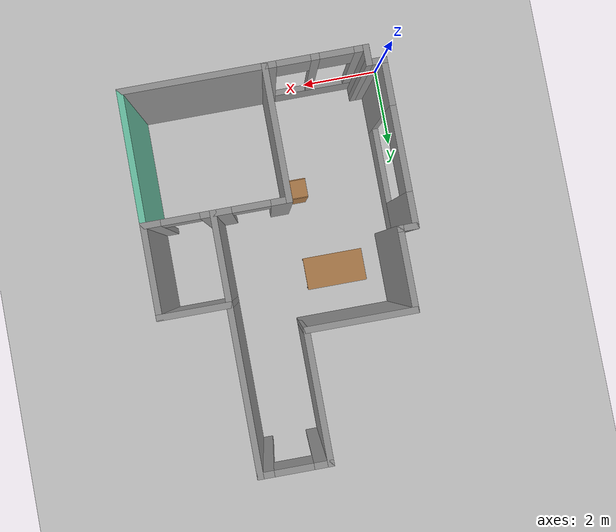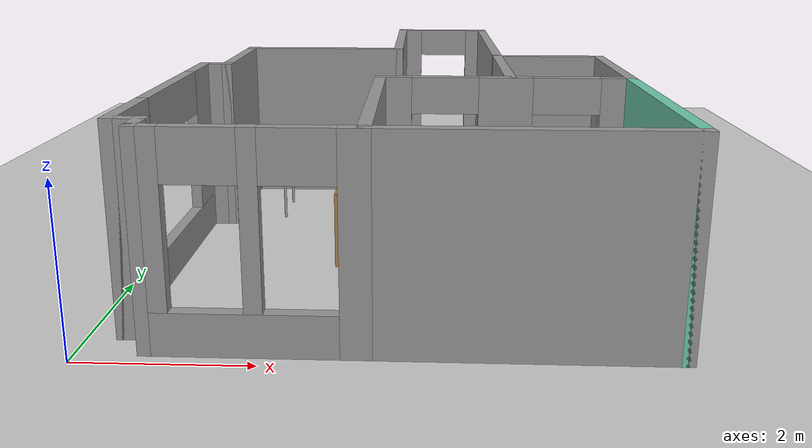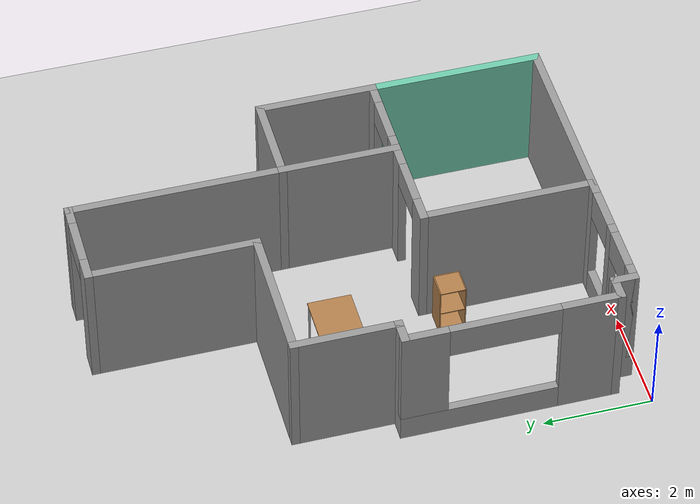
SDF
<sdf version="1.6">
 <world name="default">
  <light name="sun" type="directional">
   <pose>0 0 10 0 -0 0</pose>
   <diffuse>0.8 0.8 0.8 1</diffuse>
   <specular>0.2 0.2 0.2 1</specular>
   <attenuation>
    <range>1000</range>
    <constant>0.9</constant>
    <linear>0.01</linear>
    <quadratic>0.001</quadratic>
   </attenuation>
   <direction>-0.5 0.1 -0.9</direction>
  </light>
  <model name="ground_plane">
   <static>1</static>
   <link name="link">
    <collision name="collision">
     <geometry><plane><normal>0 0 1</normal><size>100 100</size></plane></geometry>
     <surface>
      <contact><collide_bitmask>65535</collide_bitmask></contact>
      <friction><ode><mu>100</mu><mu2>50</mu2></ode></friction>
     </surface>
    </collision>
    <visual name="visual">
     <cast_shadows>0</cast_shadows>
     <geometry><plane><normal>0 0 1</normal><size>100 100</size></plane></geometry>
     <material>
      <script><uri>file://media/materials/scripts/gazebo.material</uri><name>Gazebo/Grey</name></script>
     </material>
    </visual>
   </link>
  </model>
  <gravity>0 0 -9.8</gravity>
  <magnetic_field>6e-06 2.3e-05 -4.2e-05</magnetic_field>
  <atmosphere type="adiabatic"/>
  <physics name="default_physics" default="0" type="ode">
   <max_step_size>0.001</max_step_size>
   <real_time_factor>1</real_time_factor>
   <real_time_update_rate>1000</real_time_update_rate>
  </physics>
  <scene><ambient>0.4 0.4 0.4 1</ambient><background>0.7 0.7 0.7 1</background><shadows>1</shadows></scene>
  <spherical_coordinates>
   <surface_model>EARTH_WGS84</surface_model>
   <latitude_deg>0</latitude_deg>
   <longitude_deg>0</longitude_deg>
   <elevation>0</elevation>
   <heading_deg>0</heading_deg>
  </spherical_coordinates>
  <model name="Myplace">
   <pose>3.4372 4.76033 0 0 -0 0</pose>
   <link name="Wall_0">
    <collision name="Wall_0_Collision">
     <geometry><box><size>3.5 0.15 2.5</size></box></geometry>
     <pose>0 0 1.25 0 -0 0</pose>
    </collision>
    <visual name="Wall_0_Visual">
     <pose>0 0 1.25 0 -0 0</pose>
     <geometry><box><size>3.5 0.15 2.5</size></box></geometry>
     <material>
      <script><uri>file://media/materials/scripts/gazebo.material</uri><name>Gazebo/Grey</name></script>
      <ambient>1 1 1 1</ambient>
     </material>
     <meta><layer>0</layer></meta>
    </visual>
    <pose>1.35 -4.5295 0 0 -0 0</pose>
   </link>
   <link name="Wall_1">
    <collision name="Wall_1_Collision">
     <geometry><box><size>3.25 0.15 2.5</size></box></geometry>
     <pose>0 0 1.25 0 -0 0</pose>
    </collision>
    <visual name="Wall_1_Visual">
     <pose>0 0 1.25 0 -0 0</pose>
     <geometry><box><size>3.25 0.15 2.5</size></box></geometry>
     <material>
      <script><uri>file://media/materials/scripts/gazebo.material</uri><name>Gazebo/Grey</name></script>
      <ambient>0.435294 0.796078 0.67451 1</ambient>
     </material>
     <meta><layer>0</layer></meta>
    </visual>
    <pose>3.025 -2.9795 0 0 -0 1.5708</pose>
   </link>
   <link name="Wall_10">
    <collision name="Wall_10_Collision">
     <geometry><box><size>0.5 0.15 2.5</size></box></geometry>
     <pose>0 0 1.25 0 -0 0</pose>
    </collision>
    <visual name="Wall_10_Visual">
     <pose>0 0 1.25 0 -0 0</pose>
     <geometry><box><size>0.5 0.15 2.5</size></box></geometry>
     <material>
      <script><uri>file://media/materials/scripts/gazebo.material</uri><name>Gazebo/Grey</name></script>
      <ambient>1 1 1 1</ambient>
     </material>
     <meta><layer>0</layer></meta>
    </visual>
    <pose>-2.675 -4.3545 0 0 -0 1.5708</pose>
   </link>
   <link name="Wall_11">
    <collision name="Wall_11_Collision">
     <geometry><box><size>0.5 0.15 2.5</size></box></geometry>
     <pose>0 0 1.25 0 -0 0</pose>
    </collision>
    <visual name="Wall_11_Visual">
     <pose>0 0 1.25 0 -0 0</pose>
     <geometry><box><size>0.5 0.15 2.5</size></box></geometry>
     <material>
      <script><uri>file://media/materials/scripts/gazebo.material</uri><name>Gazebo/Grey</name></script>
      <ambient>1 1 1 1</ambient>
     </material>
     <meta><layer>0</layer></meta>
    </visual>
    <pose>-2.85 -4.1795 0 0 -0 3.14159</pose>
   </link>
   <link name="Wall_12">
    <pose>-3.025 -2.2545 0 0 -0 1.5708</pose>
    <visual name="Wall_12_Visual_0">
     <pose>-1.43085 0 1.25 0 -0 0</pose>
     <geometry><box><size>1.1383 0.15 2.5</size></box></geometry>
     <material>
      <script><uri>file://media/materials/scripts/gazebo.material</uri><name>Gazebo/Grey</name></script>
      <ambient>1 1 1 1</ambient>
     </material>
     <meta><layer>0</layer></meta>
    </visual>
    <collision name="Wall_12_Collision_0">
     <geometry><box><size>1.1383 0.15 2.5</size></box></geometry>
     <pose>-1.43085 0 1.25 0 -0 0</pose>
    </collision>
    <visual name="Wall_12_Visual_1">
     <pose>0.569148 0 0.25 0 -0 0</pose>
     <geometry><box><size>2.8617 0.15 0.5</size></box></geometry>
     <material>
      <script><uri>file://media/materials/scripts/gazebo.material</uri><name>Gazebo/Grey</name></script>
      <ambient>1 1 1 1</ambient>
     </material>
     <meta><layer>0</layer></meta>
    </visual>
    <collision name="Wall_12_Collision_1">
     <geometry><box><size>2.8617 0.15 0.5</size></box></geometry>
     <pose>0.569148 0 0.25 0 -0 0</pose>
    </collision>
    <visual name="Wall_12_Visual_2">
     <pose>1.56915 0 1.5 0 -0 0</pose>
     <geometry><box><size>0.861703 0.15 2</size></box></geometry>
     <material>
      <script><uri>file://media/materials/scripts/gazebo.material</uri><name>Gazebo/Grey</name></script>
      <ambient>1 1 1 1</ambient>
     </material>
     <meta><layer>0</layer></meta>
    </visual>
    <collision name="Wall_12_Collision_2">
     <geometry><box><size>0.861703 0.15 2</size></box></geometry>
     <pose>1.56915 0 1.5 0 -0 0</pose>
    </collision>
    <visual name="Wall_12_Visual_3">
     <pose>0.138297 0 2.2 0 -0 0</pose>
     <geometry><box><size>2 0.15 0.6</size></box></geometry>
     <material>
      <script><uri>file://media/materials/scripts/gazebo.material</uri><name>Gazebo/Grey</name></script>
      <ambient>1 1 1 1</ambient>
     </material>
     <meta><layer>0</layer></meta>
    </visual>
    <collision name="Wall_12_Collision_3">
     <geometry><box><size>2 0.15 0.6</size></box></geometry>
     <pose>0.138297 0 2.2 0 -0 0</pose>
    </collision>
   </link>
   <link name="Wall_13">
    <collision name="Wall_13_Collision">
     <geometry><box><size>0.5 0.15 2.5</size></box></geometry>
     <pose>0 0 1.25 0 -0 0</pose>
    </collision>
    <visual name="Wall_13_Visual">
     <pose>0 0 1.25 0 -0 0</pose>
     <geometry><box><size>0.5 0.15 2.5</size></box></geometry>
     <material>
      <script><uri>file://media/materials/scripts/gazebo.material</uri><name>Gazebo/Grey</name></script>
      <ambient>1 1 1 1</ambient>
     </material>
     <meta><layer>0</layer></meta>
    </visual>
    <pose>-2.85 -0.3295 0 0 -0 0</pose>
   </link>
   <link name="Wall_14">
    <collision name="Wall_14_Collision">
     <geometry><box><size>2.009 0.15 2.5</size></box></geometry>
     <pose>0 0 1.25 0 -0 0</pose>
    </collision>
    <visual name="Wall_14_Visual">
     <pose>0 0 1.25 0 -0 0</pose>
     <geometry><box><size>2.009 0.15 2.5</size></box></geometry>
     <material>
      <script><uri>file://media/materials/scripts/gazebo.material</uri><name>Gazebo/Grey</name></script>
      <ambient>1 1 1 1</ambient>
     </material>
     <meta><layer>0</layer></meta>
    </visual>
    <pose>-2.675 0.6 0 0 -0 1.5708</pose>
   </link>
   <link name="Wall_15">
    <collision name="Wall_15_Collision">
     <geometry><box><size>2.65002 0.15 2.5</size></box></geometry>
     <pose>0 0 1.25 0 -0 0</pose>
    </collision>
    <visual name="Wall_15_Visual">
     <pose>0 0 1.25 0 -0 0</pose>
     <geometry><box><size>2.65002 0.15 2.5</size></box></geometry>
     <material>
      <script><uri>file://media/materials/scripts/gazebo.material</uri><name>Gazebo/Grey</name></script>
      <ambient>1 1 1 1</ambient>
     </material>
     <meta><layer>0</layer></meta>
    </visual>
    <pose>-1.425 1.5295 0 0 -0 0</pose>
   </link>
   <link name="Wall_17">
    <collision name="Wall_17_Collision">
     <geometry><box><size>4.009 0.15 2.5</size></box></geometry>
     <pose>0 0 1.25 0 -0 0</pose>
    </collision>
    <visual name="Wall_17_Visual">
     <pose>0 0 1.25 0 -0 0</pose>
     <geometry><box><size>4.009 0.15 2.5</size></box></geometry>
     <material>
      <script><uri>file://media/materials/scripts/gazebo.material</uri><name>Gazebo/Grey</name></script>
      <ambient>1 1 1 1</ambient>
     </material>
     <meta><layer>0</layer></meta>
    </visual>
    <pose>1.425 2.6 0 0 -0 1.5708</pose>
   </link>
   <link name="Wall_18">
    <pose>0.625 4.5295 0 0 -0 3.14159</pose>
    <visual name="Wall_18_Visual_0">
     <pose>-0.676283 0 1.25 0 -0 0</pose>
     <geometry><box><size>0.397433 0.15 2.5</size></box></geometry>
     <material>
      <script><uri>file://media/materials/scripts/gazebo.material</uri><name>Gazebo/Grey</name></script>
      <ambient>1 1 1 1</ambient>
     </material>
     <meta><layer>0</layer></meta>
    </visual>
    <collision name="Wall_18_Collision_0">
     <geometry><box><size>0.397433 0.15 2.5</size></box></geometry>
     <pose>-0.676283 0 1.25 0 -0 0</pose>
    </collision>
    <visual name="Wall_18_Visual_1">
     <pose>0.648717 0 1.25 0 -0 0</pose>
     <geometry><box><size>0.452567 0.15 2.5</size></box></geometry>
     <material>
      <script><uri>file://media/materials/scripts/gazebo.material</uri><name>Gazebo/Grey</name></script>
      <ambient>1 1 1 1</ambient>
     </material>
     <meta><layer>0</layer></meta>
    </visual>
    <collision name="Wall_18_Collision_1">
     <geometry><box><size>0.452567 0.15 2.5</size></box></geometry>
     <pose>0.648717 0 1.25 0 -0 0</pose>
    </collision>
    <visual name="Wall_18_Visual_2">
     <pose>-0.027567 0 2.25 0 -0 0</pose>
     <geometry><box><size>0.9 0.15 0.5</size></box></geometry>
     <material>
      <script><uri>file://media/materials/scripts/gazebo.material</uri><name>Gazebo/Grey</name></script>
      <ambient>1 1 1 1</ambient>
     </material>
     <meta><layer>0</layer></meta>
    </visual>
    <collision name="Wall_18_Collision_2">
     <geometry><box><size>0.9 0.15 0.5</size></box></geometry>
     <pose>-0.027567 0 2.25 0 -0 0</pose>
    </collision>
   </link>
   <link name="Wall_19">
    <collision name="Wall_19_Collision">
     <geometry><box><size>3.15 0.15 2.5</size></box></geometry>
     <pose>0 0 1.25 0 -0 0</pose>
    </collision>
    <visual name="Wall_19_Visual">
     <pose>0 0 1.25 0 -0 0</pose>
     <geometry><box><size>3.15 0.15 2.5</size></box></geometry>
     <material>
      <script><uri>file://media/materials/scripts/gazebo.material</uri><name>Gazebo/Grey</name></script>
      <ambient>1 1 1 1</ambient>
     </material>
     <meta><layer>0</layer></meta>
    </visual>
    <pose>-0.175 3.0295 0 0 0 -1.5708</pose>
   </link>
   <link name="Wall_2">
    <pose>1.35 -1.4295 0 0 -0 3.14159</pose>
    <visual name="Wall_2_Visual_0">
     <pose>-1.5127 0 1.25 0 -0 0</pose>
     <geometry><box><size>0.474589 0.15 2.5</size></box></geometry>
     <material>
      <script><uri>file://media/materials/scripts/gazebo.material</uri><name>Gazebo/Grey</name></script>
      <ambient>1 1 1 1</ambient>
     </material>
     <meta><layer>0</layer></meta>
    </visual>
    <collision name="Wall_2_Collision_0">
     <geometry><box><size>0.474589 0.15 2.5</size></box></geometry>
     <pose>-1.5127 0 1.25 0 -0 0</pose>
    </collision>
    <visual name="Wall_2_Visual_1">
     <pose>-0.011425 0 1.25 0 -0 0</pose>
     <geometry><box><size>0.727971 0.15 2.5</size></box></geometry>
     <material>
      <script><uri>file://media/materials/scripts/gazebo.material</uri><name>Gazebo/Grey</name></script>
      <ambient>1 1 1 1</ambient>
     </material>
     <meta><layer>0</layer></meta>
    </visual>
    <collision name="Wall_2_Collision_1">
     <geometry><box><size>0.727971 0.15 2.5</size></box></geometry>
     <pose>-0.011425 0 1.25 0 -0 0</pose>
    </collision>
    <visual name="Wall_2_Visual_2">
     <pose>1.50128 0 1.25 0 -0 0</pose>
     <geometry><box><size>0.49744 0.15 2.5</size></box></geometry>
     <material>
      <script><uri>file://media/materials/scripts/gazebo.material</uri><name>Gazebo/Grey</name></script>
      <ambient>1 1 1 1</ambient>
     </material>
     <meta><layer>0</layer></meta>
    </visual>
    <collision name="Wall_2_Collision_2">
     <geometry><box><size>0.49744 0.15 2.5</size></box></geometry>
     <pose>1.50128 0 1.25 0 -0 0</pose>
    </collision>
    <visual name="Wall_2_Visual_3">
     <pose>-0.825411 0 2.25 0 -0 0</pose>
     <geometry><box><size>0.9 0.15 0.5</size></box></geometry>
     <material>
      <script><uri>file://media/materials/scripts/gazebo.material</uri><name>Gazebo/Grey</name></script>
      <ambient>1 1 1 1</ambient>
     </material>
     <meta><layer>0</layer></meta>
    </visual>
    <collision name="Wall_2_Collision_3">
     <geometry><box><size>0.9 0.15 0.5</size></box></geometry>
     <pose>-0.825411 0 2.25 0 -0 0</pose>
    </collision>
    <visual name="Wall_2_Visual_4">
     <pose>0.80256 0 2.25 0 -0 0</pose>
     <geometry><box><size>0.9 0.15 0.5</size></box></geometry>
     <material>
      <script><uri>file://media/materials/scripts/gazebo.material</uri><name>Gazebo/Grey</name></script>
      <ambient>1 1 1 1</ambient>
     </material>
     <meta><layer>0</layer></meta>
    </visual>
    <collision name="Wall_2_Collision_4">
     <geometry><box><size>0.9 0.15 0.5</size></box></geometry>
     <pose>0.80256 0 2.25 0 -0 0</pose>
    </collision>
   </link>
   <link name="Wall_3">
    <collision name="Wall_3_Collision">
     <geometry><box><size>3.25 0.15 2.5</size></box></geometry>
     <pose>0 0 1.25 0 -0 0</pose>
    </collision>
    <visual name="Wall_3_Visual">
     <pose>0 0 1.25 0 -0 0</pose>
     <geometry><box><size>3.25 0.15 2.5</size></box></geometry>
     <material>
      <script><uri>file://media/materials/scripts/gazebo.material</uri><name>Gazebo/Grey</name></script>
      <ambient>1 1 1 1</ambient>
     </material>
     <meta><layer>0</layer></meta>
    </visual>
    <pose>-0.325 -2.9795 0 0 0 -1.5708</pose>
   </link>
   <link name="Wall_5">
    <collision name="Wall_5_Collision">
     <geometry><box><size>2.25 0.15 2.5</size></box></geometry>
     <pose>0 0 1.25 0 -0 0</pose>
    </collision>
    <visual name="Wall_5_Visual">
     <pose>0 0 1.25 0 -0 0</pose>
     <geometry><box><size>2.25 0.15 2.5</size></box></geometry>
     <material>
      <script><uri>file://media/materials/scripts/gazebo.material</uri><name>Gazebo/Grey</name></script>
      <ambient>1 1 1 1</ambient>
     </material>
     <meta><layer>0</layer></meta>
    </visual>
    <pose>3.025 -0.3795 0 0 -0 1.5708</pose>
   </link>
   <link name="Wall_6">
    <collision name="Wall_6_Collision">
     <geometry><box><size>1.75 0.15 2.5</size></box></geometry>
     <pose>0 0 1.25 0 -0 0</pose>
    </collision>
    <visual name="Wall_6_Visual">
     <pose>0 0 1.25 0 -0 0</pose>
     <geometry><box><size>1.75 0.15 2.5</size></box></geometry>
     <material>
      <script><uri>file://media/materials/scripts/gazebo.material</uri><name>Gazebo/Grey</name></script>
      <ambient>1 1 1 1</ambient>
     </material>
     <meta><layer>0</layer></meta>
    </visual>
    <pose>2.225 0.6705 0 0 -0 3.14159</pose>
   </link>
   <link name="Wall_7">
    <collision name="Wall_7_Collision">
     <geometry><box><size>2.25 0.15 2.5</size></box></geometry>
     <pose>0 0 1.25 0 -0 0</pose>
    </collision>
    <visual name="Wall_7_Visual">
     <pose>0 0 1.25 0 -0 0</pose>
     <geometry><box><size>2.25 0.15 2.5</size></box></geometry>
     <material>
      <script><uri>file://media/materials/scripts/gazebo.material</uri><name>Gazebo/Grey</name></script>
      <ambient>1 1 1 1</ambient>
     </material>
     <meta><layer>0</layer></meta>
    </visual>
    <pose>1.425 -0.3795 0 0 0 -1.5708</pose>
   </link>
   <link name="Wall_9">
    <pose>-1.5 -4.5295 0 0 -0 3.14159</pose>
    <visual name="Wall_9_Visual_0">
     <pose>-1.07948 0 1.25 0 -0 0</pose>
     <geometry><box><size>0.341046 0.15 2.5</size></box></geometry>
     <material>
      <script><uri>file://media/materials/scripts/gazebo.material</uri><name>Gazebo/Grey</name></script>
      <ambient>1 1 1 1</ambient>
     </material>
     <meta><layer>0</layer></meta>
    </visual>
    <collision name="Wall_9_Collision_0">
     <geometry><box><size>0.341046 0.15 2.5</size></box></geometry>
     <pose>-1.07948 0 1.25 0 -0 0</pose>
    </collision>
    <visual name="Wall_9_Visual_1">
     <pose>0.170523 0 0.25 0 -0 0</pose>
     <geometry><box><size>2.15895 0.15 0.5</size></box></geometry>
     <material>
      <script><uri>file://media/materials/scripts/gazebo.material</uri><name>Gazebo/Grey</name></script>
      <ambient>1 1 1 1</ambient>
     </material>
     <meta><layer>0</layer></meta>
    </visual>
    <collision name="Wall_9_Collision_1">
     <geometry><box><size>2.15895 0.15 0.5</size></box></geometry>
     <pose>0.170523 0 0.25 0 -0 0</pose>
    </collision>
    <visual name="Wall_9_Visual_2">
     <pose>-0.007907 0 1.5 0 -0 0</pose>
     <geometry><box><size>0.202094 0.15 2</size></box></geometry>
     <material>
      <script><uri>file://media/materials/scripts/gazebo.material</uri><name>Gazebo/Grey</name></script>
      <ambient>1 1 1 1</ambient>
     </material>
     <meta><layer>0</layer></meta>
    </visual>
    <collision name="Wall_9_Collision_2">
     <geometry><box><size>0.202094 0.15 2</size></box></geometry>
     <pose>-0.007907 0 1.5 0 -0 0</pose>
    </collision>
    <visual name="Wall_9_Visual_3">
     <pose>1.07157 0 1.5 0 -0 0</pose>
     <geometry><box><size>0.35686 0.15 2</size></box></geometry>
     <material>
      <script><uri>file://media/materials/scripts/gazebo.material</uri><name>Gazebo/Grey</name></script>
      <ambient>1 1 1 1</ambient>
     </material>
     <meta><layer>0</layer></meta>
    </visual>
    <collision name="Wall_9_Collision_3">
     <geometry><box><size>0.35686 0.15 2</size></box></geometry>
     <pose>1.07157 0 1.5 0 -0 0</pose>
    </collision>
    <visual name="Wall_9_Visual_4">
     <pose>-0.508954 0 2.2 0 -0 0</pose>
     <geometry><box><size>0.8 0.15 0.6</size></box></geometry>
     <material>
      <script><uri>file://media/materials/scripts/gazebo.material</uri><name>Gazebo/Grey</name></script>
      <ambient>1 1 1 1</ambient>
     </material>
     <meta><layer>0</layer></meta>
    </visual>
    <collision name="Wall_9_Collision_4">
     <geometry><box><size>0.8 0.15 0.6</size></box></geometry>
     <pose>-0.508954 0 2.2 0 -0 0</pose>
    </collision>
    <visual name="Wall_9_Visual_5">
     <pose>0.49314 0 2.2 0 -0 0</pose>
     <geometry><box><size>0.8 0.15 0.6</size></box></geometry>
     <material>
      <script><uri>file://media/materials/scripts/gazebo.material</uri><name>Gazebo/Grey</name></script>
      <ambient>1 1 1 1</ambient>
     </material>
     <meta><layer>0</layer></meta>
    </visual>
    <collision name="Wall_9_Collision_5">
     <geometry><box><size>0.8 0.15 0.6</size></box></geometry>
     <pose>0.49314 0 2.2 0 -0 0</pose>
    </collision>
   </link>
   <static>1</static>
  </model>
  <model name="table">
   <static>1</static>
   <link name="link">
    <collision name="surface">
     <pose>0 0 1 0 -0 0</pose>
     <geometry><box><size>1.5 0.8 0.03</size></box></geometry>
     <surface><friction><ode><mu>0.6</mu><mu2>0.6</mu2></ode></friction></surface>
    </collision>
    <visual name="visual1">
     <pose>0 0 1 0 -0 0</pose>
     <geometry><box><size>1.5 0.8 0.03</size></box></geometry>
     <material>
      <script><uri>file://media/materials/scripts/gazebo.material</uri><name>Gazebo/Wood</name></script>
     </material>
    </visual>
    <collision name="front_left_leg">
     <pose>0.68 0.38 0.5 0 -0 0</pose>
     <geometry><cylinder><radius>0.02</radius><length>1</length></cylinder></geometry>
    </collision>
    <visual name="front_left_leg">
     <pose>0.68 0.38 0.5 0 -0 0</pose>
     <geometry><cylinder><radius>0.02</radius><length>1</length></cylinder></geometry>
     <material>
      <script><uri>file://media/materials/scripts/gazebo.material</uri><name>Gazebo/Grey</name></script>
     </material>
    </visual>
    <collision name="front_right_leg">
     <pose>0.68 -0.38 0.5 0 -0 0</pose>
     <geometry><cylinder><radius>0.02</radius><length>1</length></cylinder></geometry>
    </collision>
    <visual name="front_right_leg">
     <pose>0.68 -0.38 0.5 0 -0 0</pose>
     <geometry><cylinder><radius>0.02</radius><length>1</length></cylinder></geometry>
     <material>
      <script><uri>file://media/materials/scripts/gazebo.material</uri><name>Gazebo/Grey</name></script>
     </material>
    </visual>
    <collision name="back_right_leg">
     <pose>-0.68 -0.38 0.5 0 -0 0</pose>
     <geometry><cylinder><radius>0.02</radius><length>1</length></cylinder></geometry>
    </collision>
    <visual name="back_right_leg">
     <pose>-0.68 -0.38 0.5 0 -0 0</pose>
     <geometry><cylinder><radius>0.02</radius><length>1</length></cylinder></geometry>
     <material>
      <script><uri>file://media/materials/scripts/gazebo.material</uri><name>Gazebo/Grey</name></script>
     </material>
    </visual>
    <collision name="back_left_leg">
     <pose>-0.68 0.38 0.5 0 -0 0</pose>
     <geometry><cylinder><radius>0.02</radius><length>1</length></cylinder></geometry>
    </collision>
    <visual name="back_left_leg">
     <pose>-0.68 0.38 0.5 0 -0 0</pose>
     <geometry><cylinder><radius>0.02</radius><length>1</length></cylinder></geometry>
     <material>
      <script><uri>file://media/materials/scripts/gazebo.material</uri><name>Gazebo/Grey</name></script>
     </material>
    </visual>
   </link>
   <pose>2.20411 5.08525 0 0 -0 0</pose>
  </model>
  <model name="cabinet">
   <static>1</static>
   <link name="cabinet_bottom_plate">
    <inertial>
     <pose>0 0 -1 0 -0 0</pose>
     <inertia><ixx>2.05</ixx><ixy>0</ixy><ixz>0</ixz><iyy>2.05</iyy><iyz>0</iyz><izz>2.05</izz></inertia>
     <mass>25</mass>
    </inertial>
    <collision name="cabinet_bottom_plate_geom">
     <pose>0 0 0.01 0 -0 0</pose>
     <geometry><box><size>0.45 0.45 0.02</size></box></geometry>
    </collision>
    <visual name="cabinet_bottom_plate_geom_visual">
     <pose>0 0 0.01 0 -0 0</pose>
     <geometry><box><size>0.45 0.45 0.02</size></box></geometry>
     <material>
      <script><uri>file://media/materials/scripts/gazebo.material</uri><name>Gazebo/Wood</name></script>
     </material>
    </visual>
    <collision name="cabinet_bottom_plate_geom_cabinet_back_plate">
     <pose>0.235 0 0.51 0 -0 0</pose>
     <geometry><box><size>0.02 0.45 1.02</size></box></geometry>
    </collision>
    <visual name="cabinet_bottom_plate_geom_cabinet_back_plate_visual">
     <pose>0.235 0 0.51 0 -0 0</pose>
     <geometry><box><size>0.02 0.45 1.02</size></box></geometry>
     <material>
      <script><uri>file://media/materials/scripts/gazebo.material</uri><name>Gazebo/Wood</name></script>
     </material>
    </visual>
    <collision name="cabinet_bottom_plate_geom_cabinet_left_plate">
     <pose>0 0.235 0.51 0 -0 0</pose>
     <geometry><box><size>0.45 0.02 1.02</size></box></geometry>
    </collision>
    <visual name="cabinet_bottom_plate_geom_cabinet_left_plate_visual">
     <pose>0 0.235 0.51 0 -0 0</pose>
     <geometry><box><size>0.45 0.02 1.02</size></box></geometry>
     <material>
      <script><uri>file://media/materials/scripts/gazebo.material</uri><name>Gazebo/Wood</name></script>
     </material>
    </visual>
    <collision name="cabinet_bottom_plate_geom_cabinet_middle_plate">
     <pose>0 0 0.51 0 -0 0</pose>
     <geometry><box><size>0.45 0.45 0.02</size></box></geometry>
    </collision>
    <visual name="cabinet_bottom_plate_geom_cabinet_middle_plate_visual">
     <pose>0 0 0.51 0 -0 0</pose>
     <geometry><box><size>0.45 0.45 0.02</size></box></geometry>
     <material>
      <script><uri>file://media/materials/scripts/gazebo.material</uri><name>Gazebo/Wood</name></script>
     </material>
    </visual>
    <collision name="cabinet_bottom_plate_geom_cabinet_right_plate">
     <pose>0 -0.235 0.51 0 -0 0</pose>
     <geometry><box><size>0.45 0.02 1.02</size></box></geometry>
    </collision>
    <visual name="cabinet_bottom_plate_geom_cabinet_right_plate_visual">
     <pose>0 -0.235 0.51 0 -0 0</pose>
     <geometry><box><size>0.45 0.02 1.02</size></box></geometry>
     <material>
      <script><uri>file://media/materials/scripts/gazebo.material</uri><name>Gazebo/Wood</name></script>
     </material>
    </visual>
    <collision name="cabinet_bottom_plate_geom_cabinet_top_plate">
     <pose>0 0 1.01 0 -0 0</pose>
     <geometry><box><size>0.45 0.45 0.02</size></box></geometry>
    </collision>
    <visual name="cabinet_bottom_plate_geom_cabinet_top_plate_visual">
     <pose>0 0 1.01 0 -0 0</pose>
     <geometry><box><size>0.45 0.45 0.02</size></box></geometry>
     <material>
      <script><uri>file://media/materials/scripts/gazebo.material</uri><name>Gazebo/Wood</name></script>
     </material>
    </visual>
   </link>
   <pose>2.75167 2.92171 0 0 -0 0</pose>
  </model>
  <plugin filename="libcollision_map_creator.so" name="collision_map_creator"/>
 </world>
</sdf>
